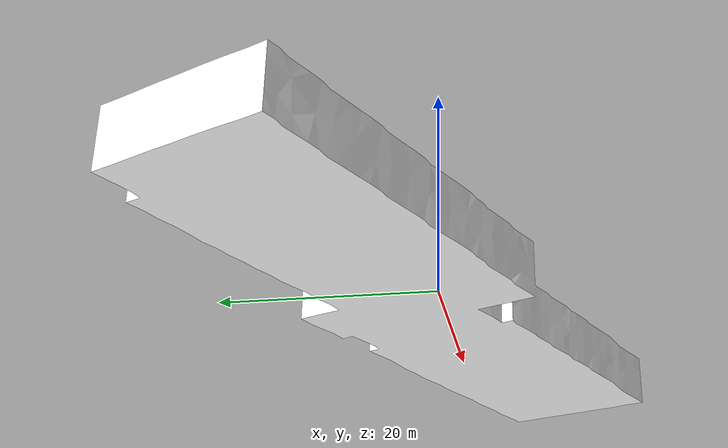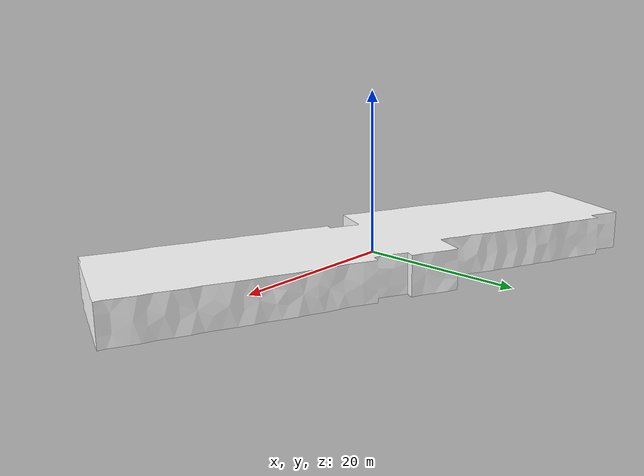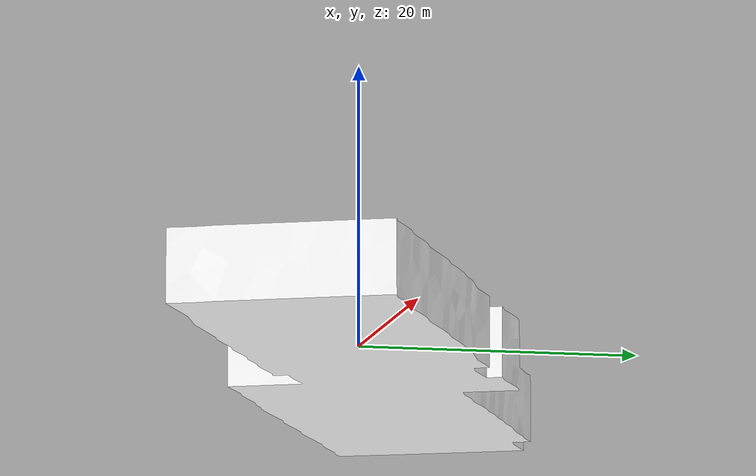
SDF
<?xml version="1.0" ?>
<sdf version="1.6">
  <model name="apartment">
    <static>true</static>
    <link name="link">
      <collision name="collision">
        <geometry>
          <mesh>
            <uri>model://apartment/meshes/refectory.dae</uri>
          </mesh>
        </geometry>
      </collision>
      <visual name="visual">
        <geometry>
          <mesh>
            <uri>model://apartment/meshes/refectory.dae</uri>
          </mesh>
        </geometry>
      </visual>
    </link>
  </model>
</sdf>
